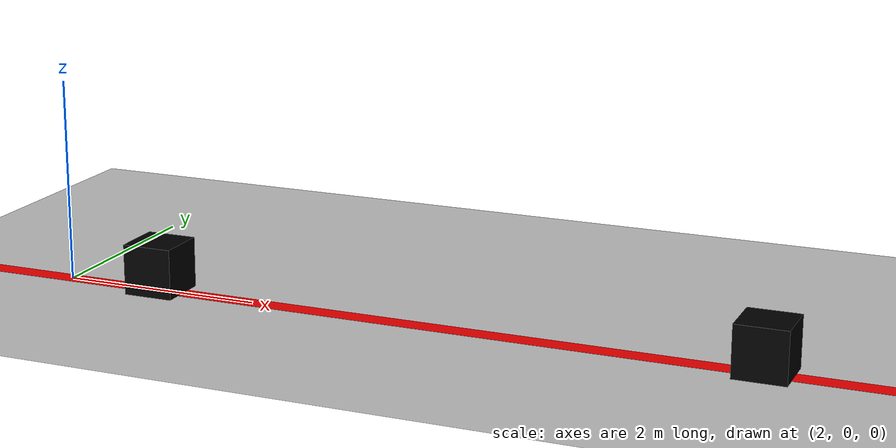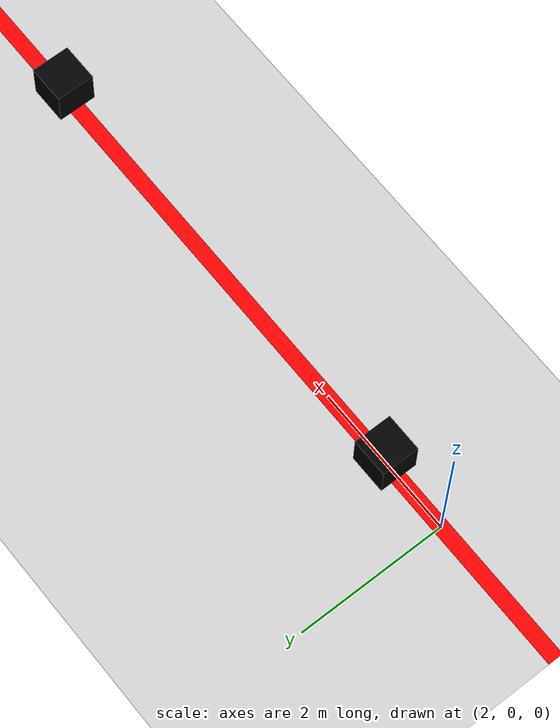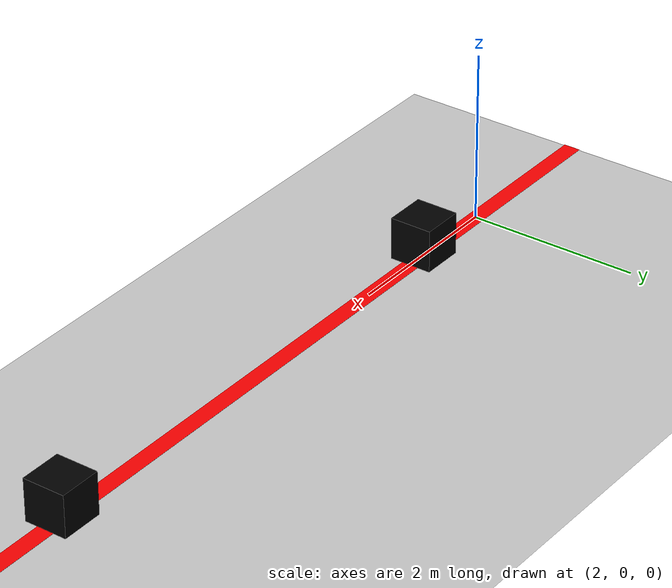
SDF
<?xml version="1.0" ?>
<sdf version="1.5">
  <world name="default">
    <include>
      <uri>model://sun</uri>
    </include>
    <include>
      <uri>model://ground_plane</uri>
    </include>

    <model name="red_path">
      <static>true</static>
      <link name="path_link">
        <pose>7.5 0 0.001 0 0 0</pose> <visual name="visual">
          <geometry>
            <box>
              <size>15.0 0.2 0.002</size> </box>
          </geometry>
          <material>
            <ambient>1 0 0 1</ambient>
            <diffuse>1 0 0 1</diffuse>
          </material>
        </visual>
      </link>
    </model>

    <model name="obstacle_1">
      <static>true</static>
      <link name="obs1_link">
        <pose>3.0 0 0.25 0 0 0</pose> <collision name="collision">
          <geometry><box><size>0.5 0.5 0.5</size></box></geometry>
        </collision>
        <visual name="visual">
          <geometry><box><size>0.5 0.5 0.5</size></box></geometry>
          <material><ambient>0 0 0 1</ambient><diffuse>0 0 0 1</diffuse></material>
        </visual>
      </link>
    </model>

    <model name="obstacle_2">
      <static>true</static>
      <link name="obs2_link">
        <pose>9.0 0 0.25 0 0 0</pose> <collision name="collision">
          <geometry><box><size>0.5 0.5 0.5</size></box></geometry>
        </collision>
        <visual name="visual">
          <geometry><box><size>0.5 0.5 0.5</size></box></geometry>
          <material><ambient>0 0 0 1</ambient><diffuse>0 0 0 1</diffuse></material>
        </visual>
      </link>
    </model>

  </world>
</sdf>
